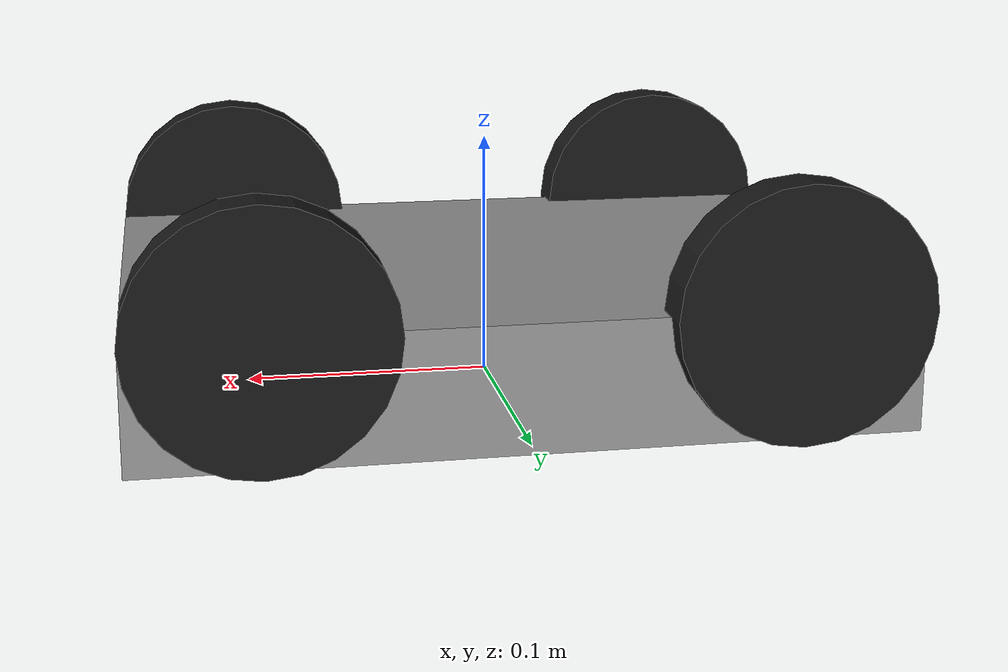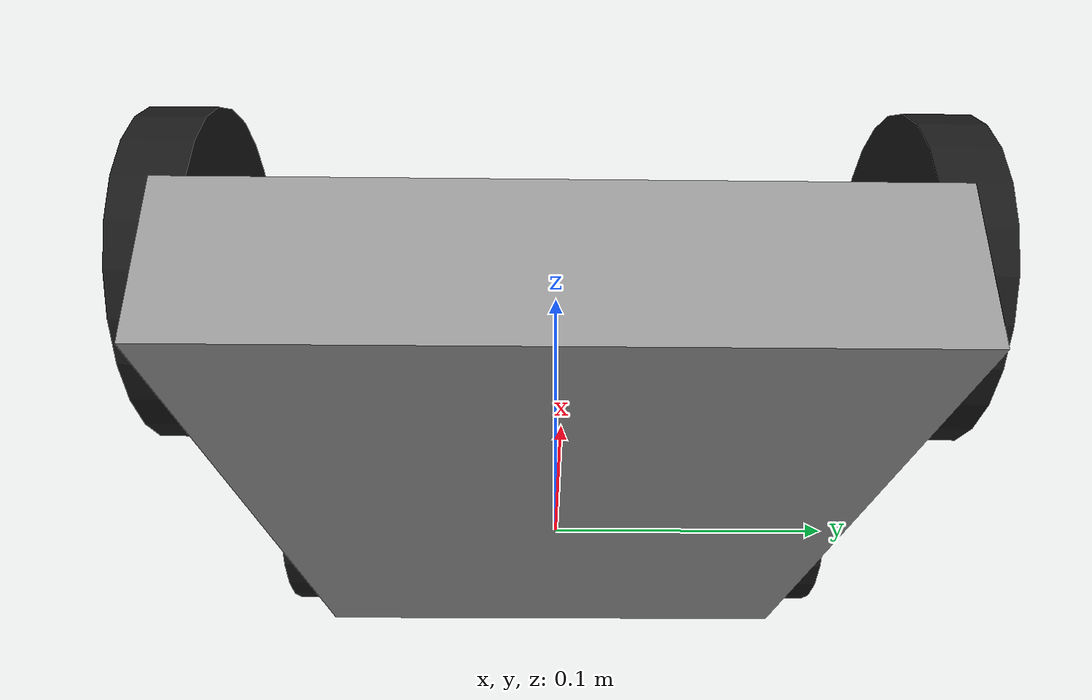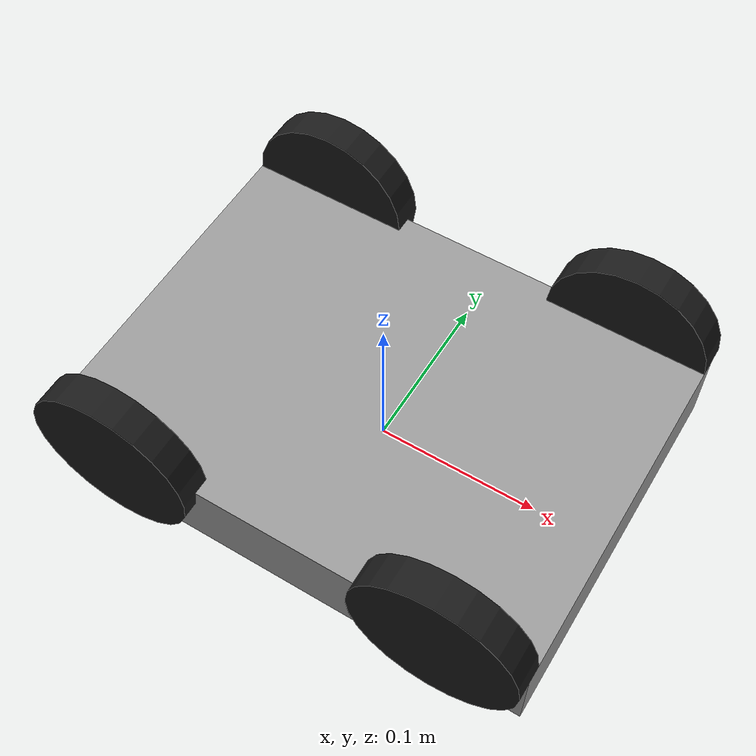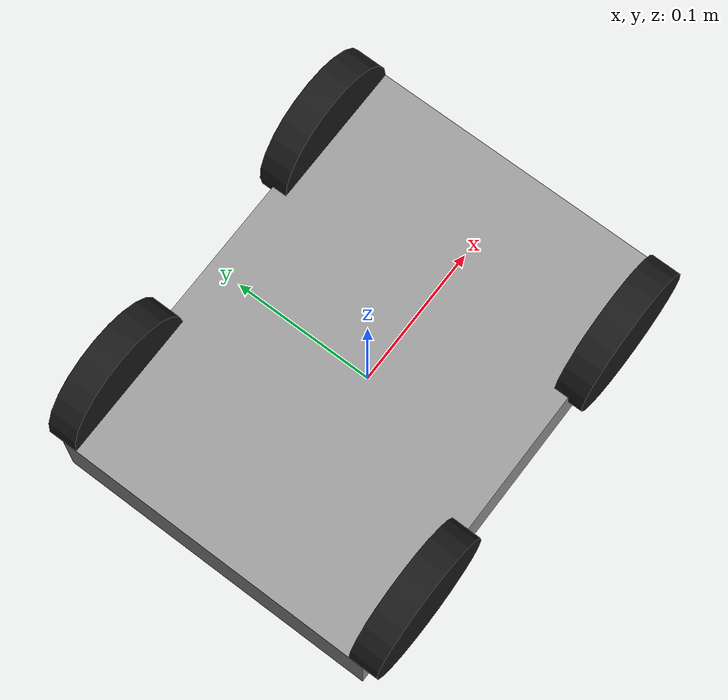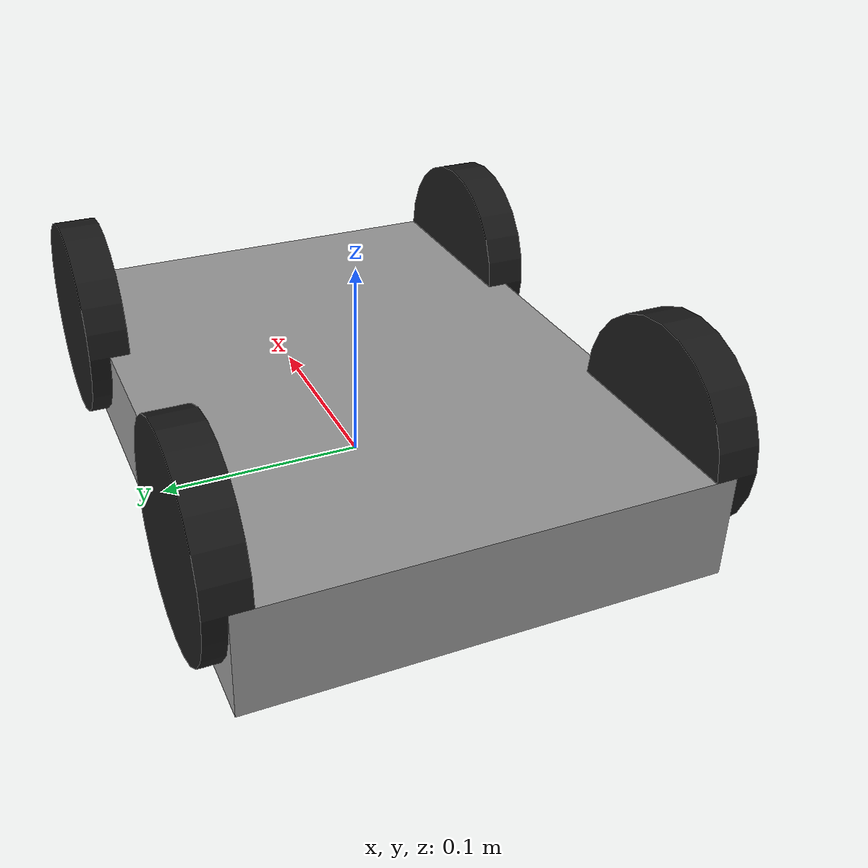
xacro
<?xml version="1.0"?>
<robot name="my_bot" xmlns:xacro="http://www.ros.org/wiki/xacro">
  <!-- Parameters -->
  <xacro:property name="wheel_radius" value="0.05"/>
  <xacro:property name="wheel_width" value="0.02"/>
  <xacro:property name="base_length" value="0.30"/>
  <xacro:property name="base_width" value="0.22"/>
  <xacro:property name="base_height" value="0.05"/>

  <!-- Base link -->
  <link name="base_link">
    <inertial>
      <origin xyz="0 0 0" rpy="0 0 0"/>
      <mass value="4.0"/>
      <inertia ixx="0.02" ixy="0.0" ixz="0.0" iyy="0.02" iyz="0.0" izz="0.03"/>
    </inertial>
    <visual>
      <origin xyz="0 0 ${base_height/2}" rpy="0 0 0"/>
      <geometry>
        <box size="${base_length} ${base_width} ${base_height}"/>
      </geometry>
      <material name="grey">
        <color rgba="0.6 0.6 0.6 1"/>
      </material>
    </visual>
    <collision>
      <origin xyz="0 0 ${base_height/2}" rpy="0 0 0"/>
      <geometry>
        <box size="${base_length} ${base_width} ${base_height}"/>
      </geometry>
    </collision>
  </link>

  <!-- Macro for wheel -->
  <xacro:macro name="wheel" params="name x y">
    <link name="${name}">
      <inertial>
        <origin xyz="0 0 0" rpy="0 0 0"/>
        <mass value="0.2"/>
        <inertia ixx="0.0005" ixy="0" ixz="0" iyy="0.0005" iyz="0" izz="0.0009"/>
      </inertial>
      <visual>
        <origin xyz="0 0 0" rpy="1.5708 0 0"/>
        <geometry>
          <cylinder length="${wheel_width}" radius="${wheel_radius}"/>
        </geometry>
        <material name="black">
          <color rgba="0.1 0.1 0.1 1"/>
        </material>
      </visual>
      <collision>
        <origin xyz="0 0 0" rpy="1.5708 0 0"/>
        <geometry>
          <cylinder length="${wheel_width}" radius="${wheel_radius}"/>
        </geometry>
      </collision>
    </link>
    <joint name="${name}_joint" type="continuous">
      <parent link="base_link"/>
      <child link="${name}"/>
      <origin xyz="${x} ${y} ${wheel_radius}" rpy="0 0 0"/>
      <axis xyz="0 1 0"/>
      <dynamics damping="0.2" friction="0.0"/>
    </joint>
  </xacro:macro>

  <!-- Wheels positions -->
  <xacro:wheel name="left_front_wheel"  x="${ base_length/2 - 0.05 }" y="${ base_width/2 }"/>
  <xacro:wheel name="left_rear_wheel"   x="${ -base_length/2 + 0.05 }" y="${ base_width/2 }"/>
  <xacro:wheel name="right_front_wheel" x="${ base_length/2 - 0.05 }" y="${ -base_width/2 }"/>
  <xacro:wheel name="right_rear_wheel"  x="${ -base_length/2 + 0.05 }" y="${ -base_width/2 }"/>

  <!-- ros2_control configuration embedded -->
  <ros2_control name="MyBotSystem" type="system">
    <hardware>
      <plugin>gazebo_ros2_control/GazeboSystem</plugin>
    </hardware>
    <joint name="left_front_wheel_joint">
      <command_interface name="velocity"/>
      <state_interface name="position"/>
      <state_interface name="velocity"/>
    </joint>
    <joint name="left_rear_wheel_joint">
      <command_interface name="velocity"/>
      <state_interface name="position"/>
      <state_interface name="velocity"/>
    </joint>
    <joint name="right_front_wheel_joint">
      <command_interface name="velocity"/>
      <state_interface name="position"/>
      <state_interface name="velocity"/>
    </joint>
    <joint name="right_rear_wheel_joint">
      <command_interface name="velocity"/>
      <state_interface name="position"/>
      <state_interface name="velocity"/>
    </joint>
  </ros2_control>

  <!-- Gazebo plugin to integrate ros2_control -->
  <gazebo>
    <plugin name="gazebo_ros2_control" filename="libgazebo_ros2_control.so">
      <parameters>$(find my_bot)/config/ros2_control.yaml</parameters>
    </plugin>
  </gazebo>

  <!-- Simple collision with ground contact (optional friction tuning) -->
  <gazebo reference="base_link">
    <material>Gazebo/Grey</material>
  </gazebo>
  <gazebo reference="left_front_wheel">
    <material>Gazebo/Black</material>
  </gazebo>
  <gazebo reference="left_rear_wheel">
    <material>Gazebo/Black</material>
  </gazebo>
  <gazebo reference="right_front_wheel">
    <material>Gazebo/Black</material>
  </gazebo>
  <gazebo reference="right_rear_wheel">
    <material>Gazebo/Black</material>
  </gazebo>
</robot>
